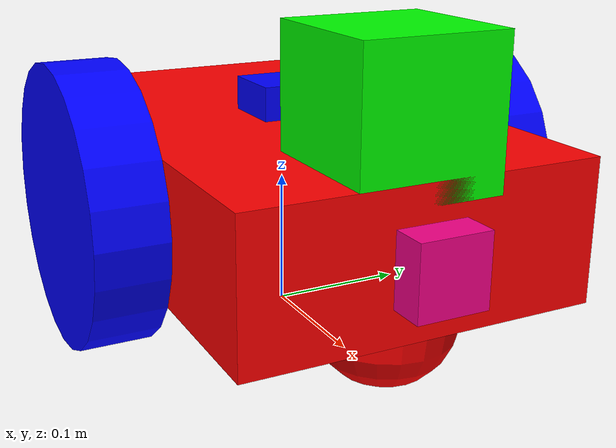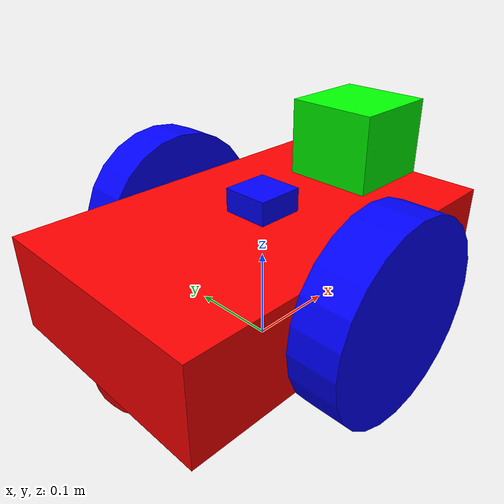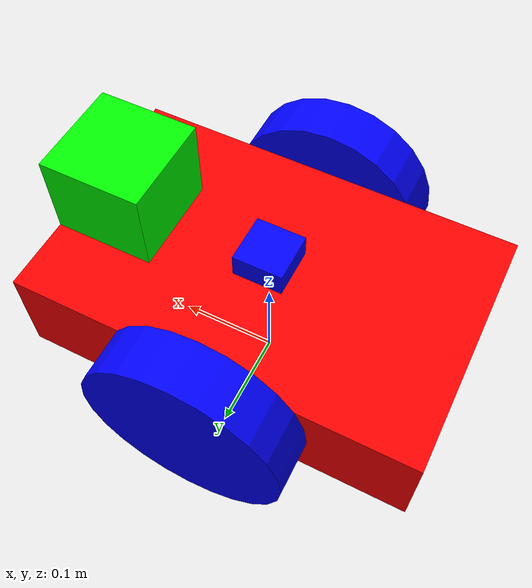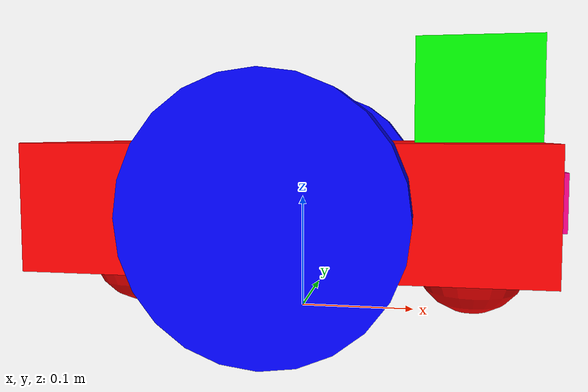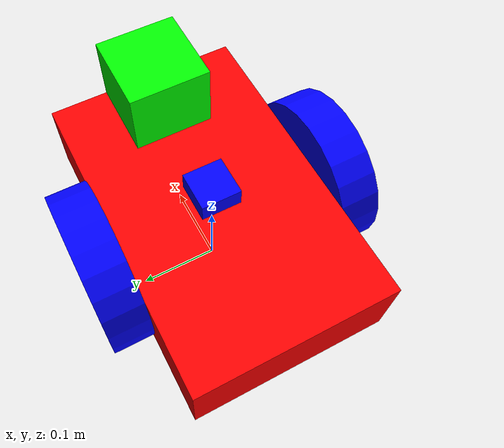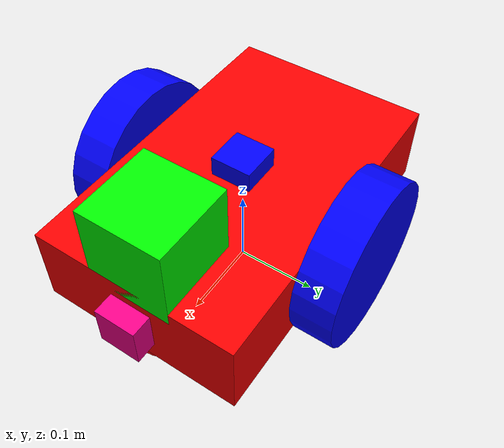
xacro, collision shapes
<?xml version='1.0'?>
<robot name="diff_robot" xmlns:xacro="http://www.ros.org/wiki/xacro">

    <xacro:include filename="$(find diff_robot)/urdf/diff_robot.gazebo" />

    <!-- LINKS -->

    <link name="base_footprint"></link>

    <link name='chassis'>
        <pose>0 0 0.1 0 0 0</pose>

        <inertial>
            <mass value="15.0" />
            <origin xyz="0.0 0 0" rpy=" 0 0 0" />
            <inertia ixx="0.1" ixy="0" ixz="0" iyy="0.1" iyz="0" izz="0.1" />
        </inertial>

        <collision name='collision'>
            <origin xyz="0 0 0" rpy=" 0 0 0" />
            <geometry>
                <box size="0.4 0.25 0.1" />
            </geometry>
        </collision>

        <visual name='chassis_visual'>
            <origin xyz="0 0 0" rpy=" 0 0 0" />
            <geometry>
                <box size="0.4 0.25 0.1" />
            </geometry>
            <material name="red">
                <color rgba="1 0 0 1" />
            </material>
        </visual>

        <collision name='back_caster_collision'>
            <origin xyz="-0.15 0 -0.05" rpy=" 0 0 0" />
            <geometry>
                <sphere radius="0.0499" />
            </geometry>
        </collision>

        <visual name='back_caster_visual'>
            <origin xyz="-0.15 0 -0.05" rpy=" 0 0 0" />
            <geometry>
                <sphere radius="0.05" />
            </geometry>
        </visual>

        <collision name='front_caster_collision'>
            <origin xyz="0.15 0 -0.05" rpy=" 0 0 0" />
            <geometry>
                <sphere radius="0.0499" />
            </geometry>
        </collision>

        <visual name='front_caster_visual'>
            <origin xyz="0.15 0 -0.05" rpy=" 0 0 0" />
            <geometry>
                <sphere radius="0.05" />
            </geometry>

        </visual>
    </link>

    <link name="left_wheel">
        <visual>
            <origin xyz="0 0 0" rpy="0 1.5707 1.5707" />
            <geometry>
                <cylinder radius="0.1" length="0.05" />
            </geometry>
            <material name="blue">
                <color rgba="0 0 1 1" />
            </material>
        </visual>

        <collision>
            <origin xyz="0 0 0" rpy="0 1.5707 1.5707" />
            <geometry>
                <cylinder radius="0.1" length="0.05" />
            </geometry>
        </collision>

        <inertial>
            <mass value="5" />
            <origin xyz="0.0 0 0" rpy=" 0 0 0" />
            <inertia ixx="0.1" ixy="0" ixz="0" iyy="0.1" iyz="0" izz="0.1" />
        </inertial>
    </link>

    <link name="right_wheel">
        <visual>
            <origin xyz="0 0 0" rpy="0 1.5707 1.5707" />
            <geometry>
                <cylinder radius="0.1" length="0.05" />
            </geometry>
            <material name="blue">
                <color rgba="0 0 1 1" />
            </material>
        </visual>

        <collision>
            <origin xyz="0 0 0" rpy="0 1.5707 1.5707" />
            <geometry>
                <cylinder radius="0.1" length="0.05" />
            </geometry>
        </collision>

        <inertial>
            <mass value="5" />
            <origin xyz="0.0 0 0" rpy="0 0 0" />
            <inertia ixx="0.1" ixy="0" ixz="0" iyy="0.1" iyz="0" izz="0.1" />
        </inertial>
    </link>

    <link name="camera">
        <visual>
            <origin xyz="0 0 0" rpy="0 1.5707 0" />
            <geometry>
                <mesh filename = "file://$(find diff_robot)/meshes/camera.dae" scale="0.5 0.5 0.5"/>
            </geometry>
            <material name="magenta">
                <color rgba="0.96 0 0.53 1" />
            </material>
        </visual>

        <collision>
            <origin xyz="0 0 0" rpy="0 0 0" />
            <geometry>
                <box size="0.05 0.05 0.05" />
            </geometry>
        </collision>

        <inertial>
            <mass value="0.1" />
            <origin xyz="0.0 0 0" rpy=" 0 0 0" />
            <inertia ixx="1e-6" ixy="0" ixz="0" iyy="1e-6" iyz="0" izz="1e-6" />
        </inertial>
    </link>

    <link name="hokuyo">
        <visual>
            <origin xyz="0 0 0" rpy="0 0 0" />
            <geometry>
                <mesh filename = "file://$(find diff_robot)/meshes/hokuyo.dae"/>
            </geometry>
            <material name="green">
                <color rgba="0 1 0 1" />
            </material>
        </visual>

        <collision>
            <origin xyz="0 0 0" rpy="0 0 0" />
            <geometry>
                <box size="0.1 0.1 0.1" />
            </geometry>
        </collision>

        <inertial>
            <mass value="1e-5" />
            <origin xyz="0.0 0 0" rpy=" 0 0 0" />
            <inertia ixx="1e-6" ixy="0" ixz="0" iyy="1e-6" iyz="0" izz="1e-6" />
        </inertial>

    </link>

    <link name="imu">
        <visual>
            <origin xyz="0 0 0" rpy="0 0 0" />
            <geometry>
                <box size="0.05 0.05 0.025" />
            </geometry>
            <material name="blue">
                <color rgba="0 0 1 1" />
            </material>
        </visual>

        <collision>
            <origin xyz="0 0 0" rpy="0 0 0" />
            <geometry>
                <box size="0.05 0.05 0.025" />
            </geometry>
        </collision>

        <inertial>
            <mass value="1e-5" />
            <origin xyz="0.0 0 0" rpy=" 0 0 0" />
            <inertia ixx="1e-6" ixy="0" ixz="0" iyy="1e-6" iyz="0" izz="1e-6" />
        </inertial>

    </link>

    <!-- JOINTS -->
    <joint name="base_footprint_joint" type="fixed">
        <origin xyz="0 0 0.1" rpy="0 0 0" />
        <parent link="base_footprint" />
        <child link="chassis" />
    </joint>

    <joint type="continuous" name="left_wheel_joint">
        <origin xyz="0 0.15 0" rpy="0 0 0" />
        <child link="left_wheel" />
        <parent link="chassis" />
        <axis xyz="0 1 0" rpy="0 0 0" />
        <limit effort="10000" velocity="1000" />
        <dynamics damping="0.02" friction="0.1" />
    </joint>

    <joint type="continuous" name="right_wheel_joint">
        <origin xyz="0 -0.15 0" rpy="0 0 0" />
        <child link="right_wheel" />
        <parent link="chassis" />
        <axis xyz="0 1 0" rpy="0 0 0" />
        <limit effort="10000" velocity="1000" />
        <dynamics damping="0.02" friction="0.1" />
    </joint>

    <joint type="fixed" name="camera_joint">
        <origin xyz="0.2 0 0" rpy="0 0 0" />
        <child link="camera" />
        <parent link="chassis" />
        <axis xyz="0 1 0" rpy="0 0 0" />
    </joint>

    <joint type="fixed" name="hokuyo_joint">
        <origin xyz="0.15 0 0.085" rpy="0 0 0" />
        <child link="hokuyo" />
        <parent link="chassis" />
    </joint>

    <joint type="fixed" name="imu_joint">
        <origin xyz="0 0 0.0625" rpy="0 0 0" />
        <child link="imu" />
        <parent link="chassis" />
    </joint>

    <!-- diff controller -->
    <ros2_control name="GazeboSystem" type="system">
        <hardware>
            <plugin>gazebo_ros2_control/GazeboSystem</plugin>
        </hardware>
        <joint name="left_wheel_joint">
            <command_interface name="velocity">
                <param name="min">-10</param>
                <param name="max">10</param>
            </command_interface>
            <state_interface name="position" />
            <state_interface name="velocity" />
            <state_interface name="effort" />
        </joint>
        <joint name="right_wheel_joint">
            <command_interface name="velocity">
                <param name="min">-10</param>
                <param name="max">10</param>
            </command_interface>
            <state_interface name="velocity" />
            <state_interface name="position" />
            <state_interface name="effort" />
        </joint>
    </ros2_control>

</robot>
